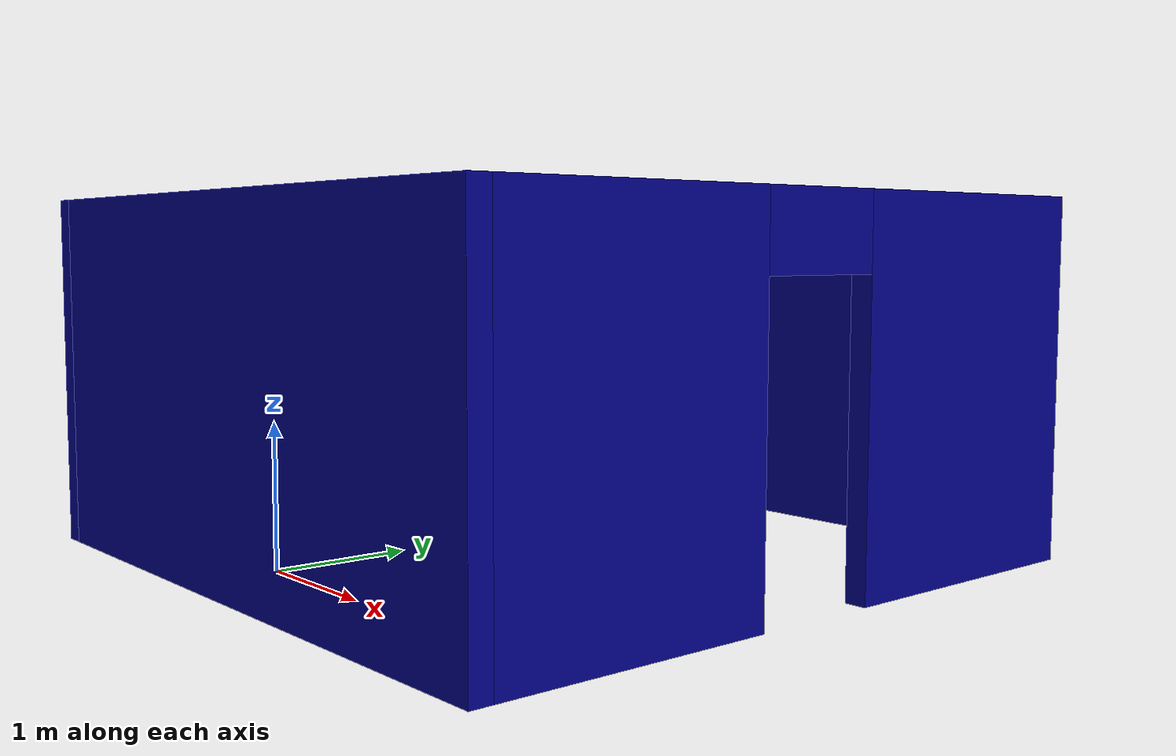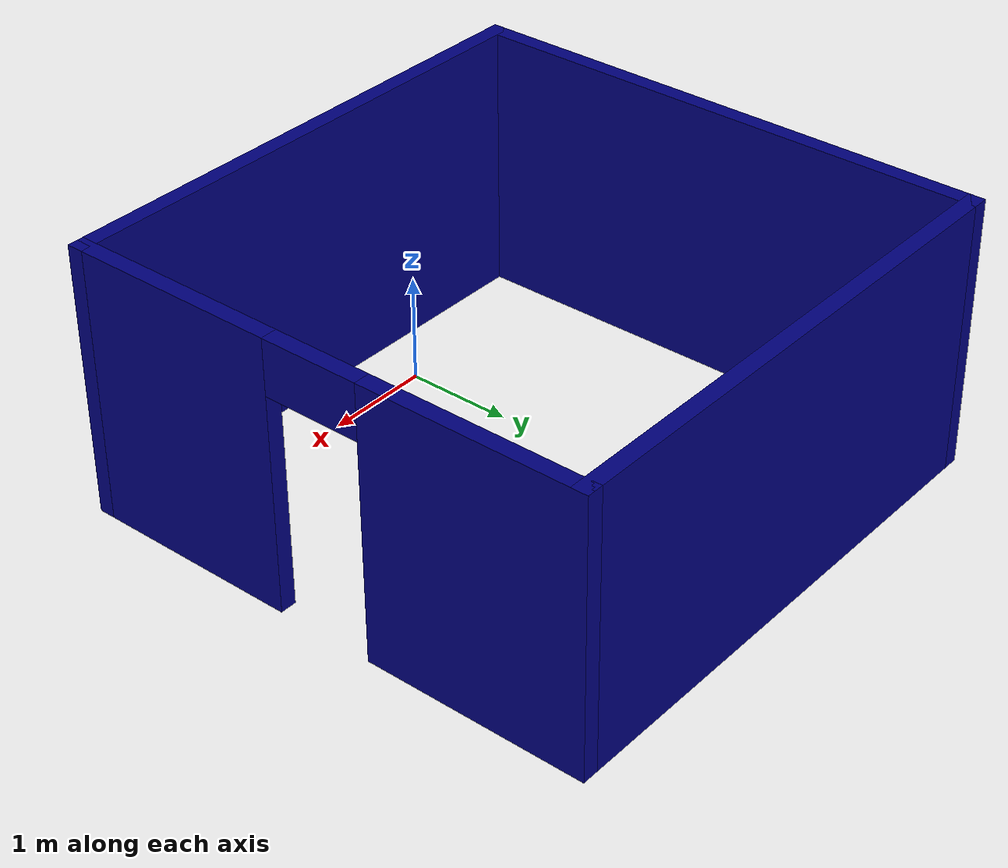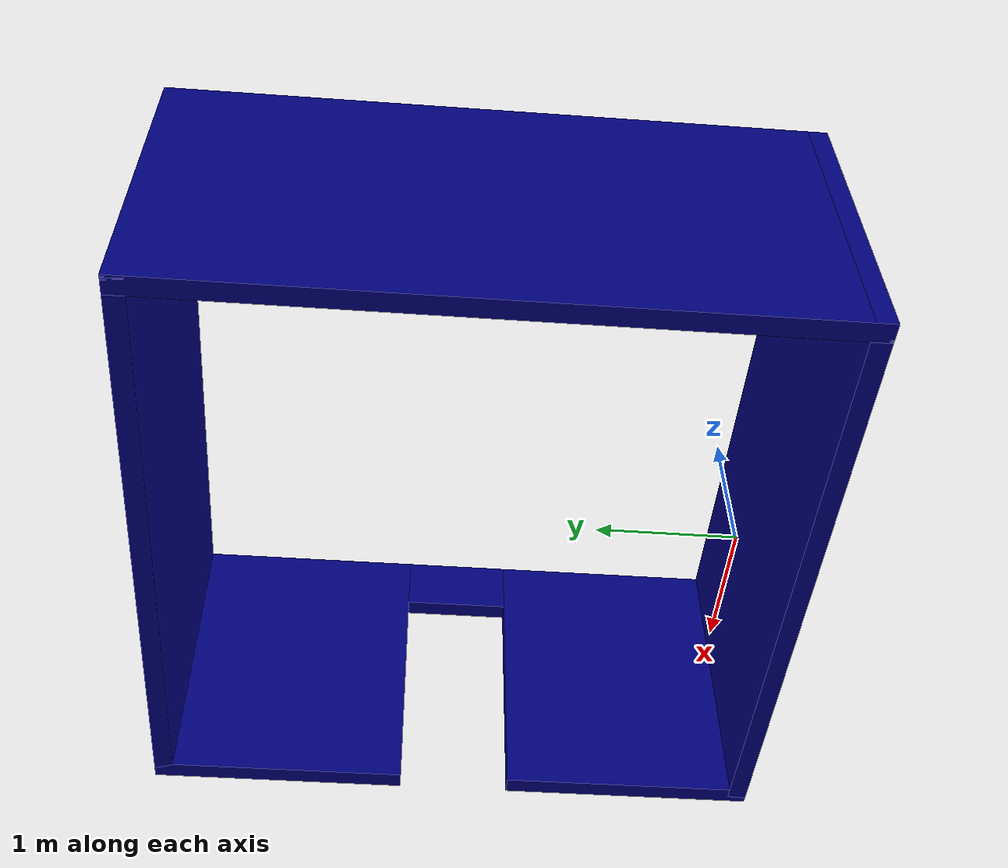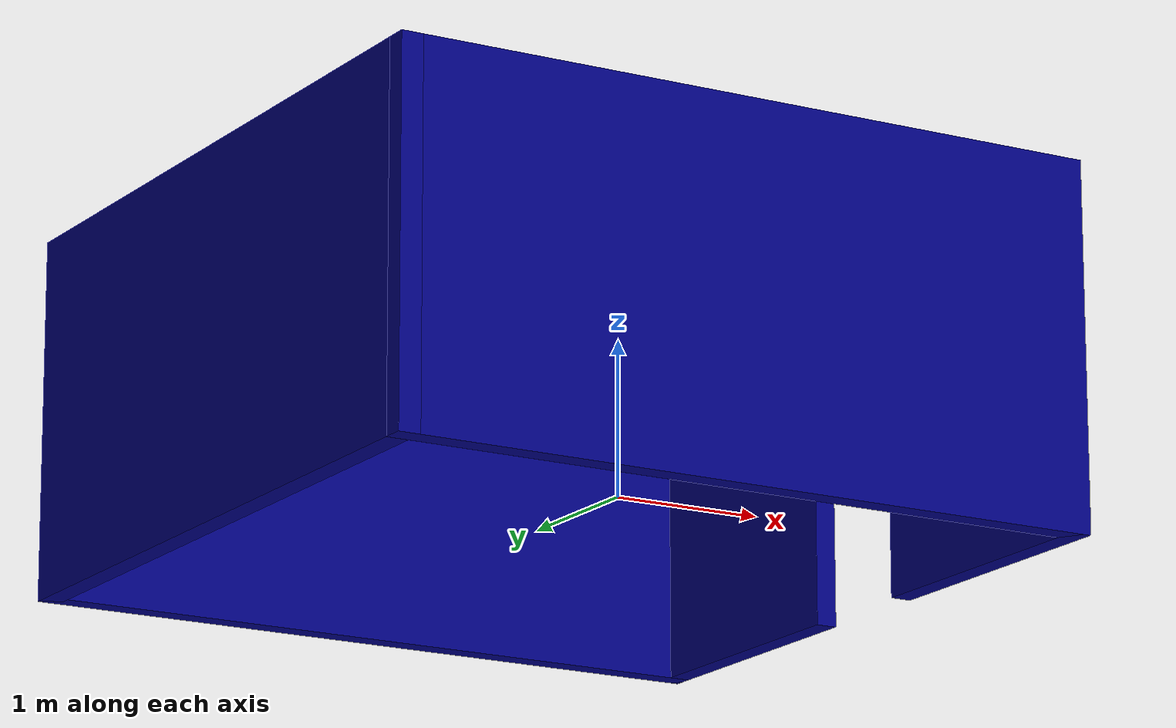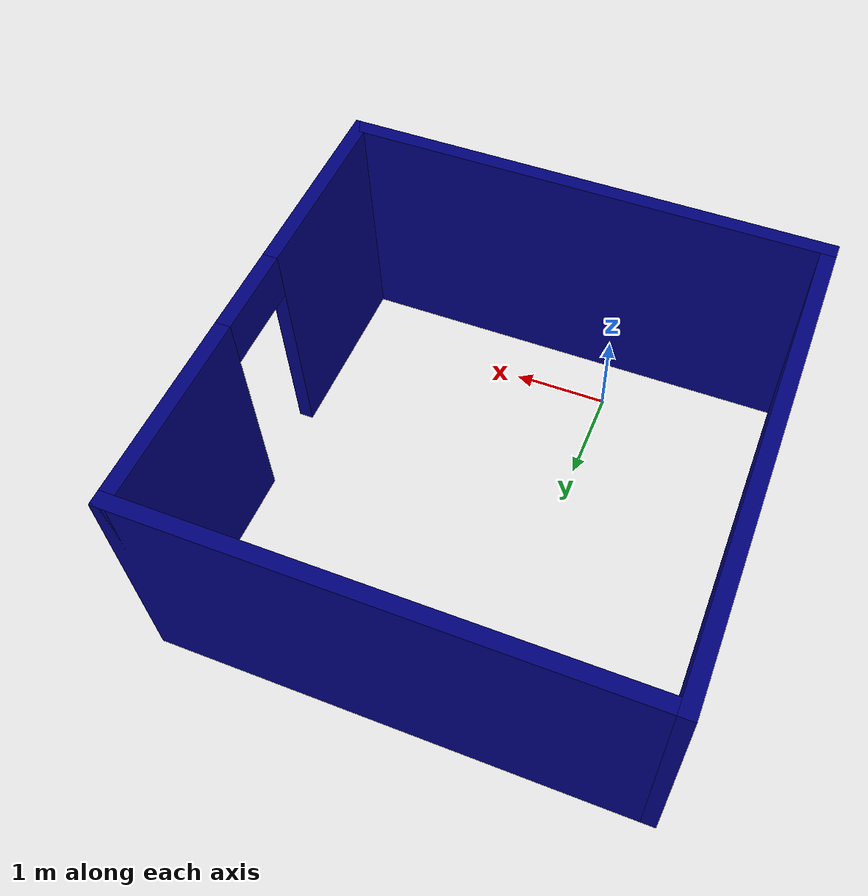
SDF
<?xml version='1.0'?>
<sdf version='1.6'>
  <model name='blue_5m_room'>
    <pose frame=''>0.585 1.825 0 0 -0 0</pose>
    <link name='Wall_0'>
      <collision name='Wall_0_Collision'>
        <geometry>
          <box>
            <size>5 0.15 2.5</size>
          </box>
        </geometry>
        <pose frame=''>0 0 1.25 0 -0 0</pose>
      </collision>
      <visual name='Wall_0_Visual'>
        <pose frame=''>0 0 1.25 0 -0 0</pose>
        <geometry>
          <box>
            <size>5 0.15 2.5</size>
          </box>
        </geometry>
        <material>
          <script>
            <uri>file://media/materials/scripts/gazebo.material</uri>
            <name>Gazebo/Grey</name>
          </script>
          <ambient>0 0 0.498039 1</ambient>
        </material>
        <meta>
          <layer>0</layer>
        </meta>
      </visual>
      <pose frame=''>-2.425 0 0 0 -0 1.5708</pose>
    </link>
    <link name='Wall_1'>
      <collision name='Wall_1_Collision'>
        <geometry>
          <box>
            <size>5 0.15 2.5</size>
          </box>
        </geometry>
        <pose frame=''>0 0 1.25 0 -0 0</pose>
      </collision>
      <visual name='Wall_1_Visual'>
        <pose frame=''>0 0 1.25 0 -0 0</pose>
        <geometry>
          <box>
            <size>5 0.15 2.5</size>
          </box>
        </geometry>
        <material>
          <script>
            <uri>file://media/materials/scripts/gazebo.material</uri>
            <name>Gazebo/Grey</name>
          </script>
          <ambient>0 0 0.498039 1</ambient>
        </material>
        <meta>
          <layer>0</layer>
        </meta>
      </visual>
      <pose frame=''>0 2.425 0 0 -0 0</pose>
    </link>
    <link name='Wall_2'>
      <pose frame=''>2.425 0 0 0 0 -1.5708</pose>
      <visual name='Wall_2_Visual_0'>
        <pose frame=''>-1.47363 0 1.25 0 -0 0</pose>
        <geometry>
          <box>
            <size>2.05274 0.15 2.5</size>
          </box>
        </geometry>
        <material>
          <script>
            <uri>file://media/materials/scripts/gazebo.material</uri>
            <name>Gazebo/Grey</name>
          </script>
          <ambient>0 0 0.498039 1</ambient>
        </material>
        <meta>
          <layer>0</layer>
        </meta>
      </visual>
      <collision name='Wall_2_Collision_0'>
        <geometry>
          <box>
            <size>2.05274 0.15 2.5</size>
          </box>
        </geometry>
        <pose frame=''>-1.47363 0 1.25 0 -0 0</pose>
      </collision>
      <visual name='Wall_2_Visual_1'>
        <pose frame=''>1.47637 0 1.25 0 -0 0</pose>
        <geometry>
          <box>
            <size>2.04726 0.15 2.5</size>
          </box>
        </geometry>
        <material>
          <script>
            <uri>file://media/materials/scripts/gazebo.material</uri>
            <name>Gazebo/Grey</name>
          </script>
          <ambient>0 0 0.498039 1</ambient>
        </material>
        <meta>
          <layer>0</layer>
        </meta>
      </visual>
      <collision name='Wall_2_Collision_1'>
        <geometry>
          <box>
            <size>2.04726 0.15 2.5</size>
          </box>
        </geometry>
        <pose frame=''>1.47637 0 1.25 0 -0 0</pose>
      </collision>
      <visual name='Wall_2_Visual_2'>
        <pose frame=''>0.00274 0 2.25 0 -0 0</pose>
        <geometry>
          <box>
            <size>0.9 0.15 0.5</size>
          </box>
        </geometry>
        <material>
          <script>
            <uri>file://media/materials/scripts/gazebo.material</uri>
            <name>Gazebo/Grey</name>
          </script>
          <ambient>0 0 0.498039 1</ambient>
        </material>
        <meta>
          <layer>0</layer>
        </meta>
      </visual>
      <collision name='Wall_2_Collision_2'>
        <geometry>
          <box>
            <size>0.9 0.15 0.5</size>
          </box>
        </geometry>
        <pose frame=''>0.00274 0 2.25 0 -0 0</pose>
      </collision>
    </link>
    <link name='Wall_3'>
      <collision name='Wall_3_Collision'>
        <geometry>
          <box>
            <size>5 0.15 2.5</size>
          </box>
        </geometry>
        <pose frame=''>0 0 1.25 0 -0 0</pose>
      </collision>
      <visual name='Wall_3_Visual'>
        <pose frame=''>0 0 1.25 0 -0 0</pose>
        <geometry>
          <box>
            <size>5 0.15 2.5</size>
          </box>
        </geometry>
        <material>
          <script>
            <uri>file://media/materials/scripts/gazebo.material</uri>
            <name>Gazebo/Grey</name>
          </script>
          <ambient>0 0 0.498039 1</ambient>
        </material>
        <meta>
          <layer>0</layer>
        </meta>
      </visual>
      <pose frame=''>0 -2.425 0 0 -0 3.14159</pose>
    </link>
    <static>1</static>
  </model>
</sdf>
